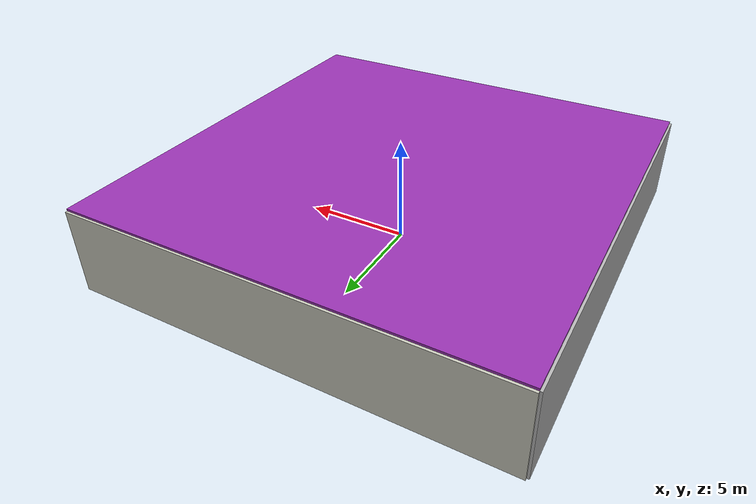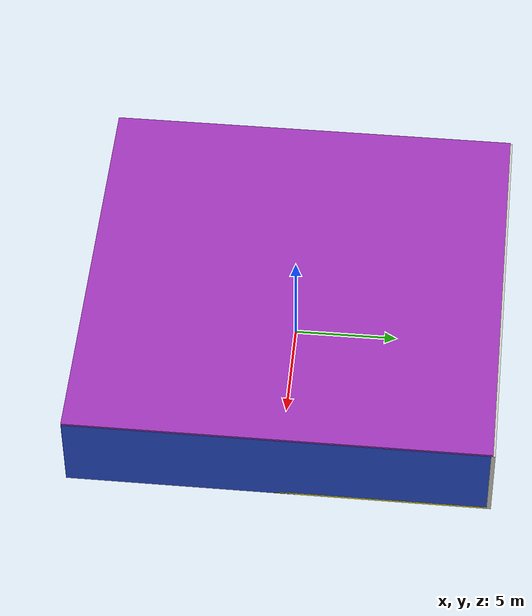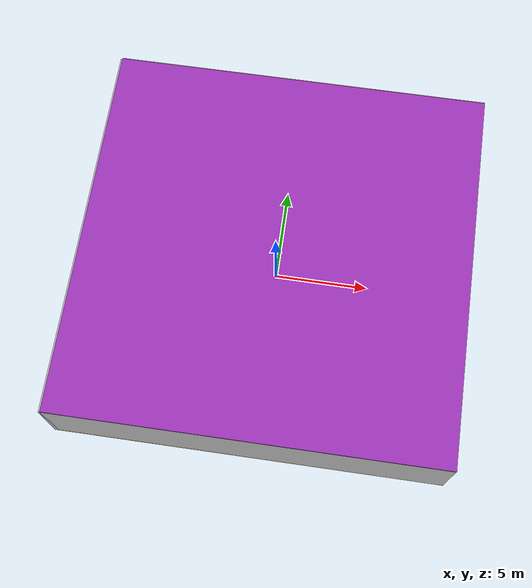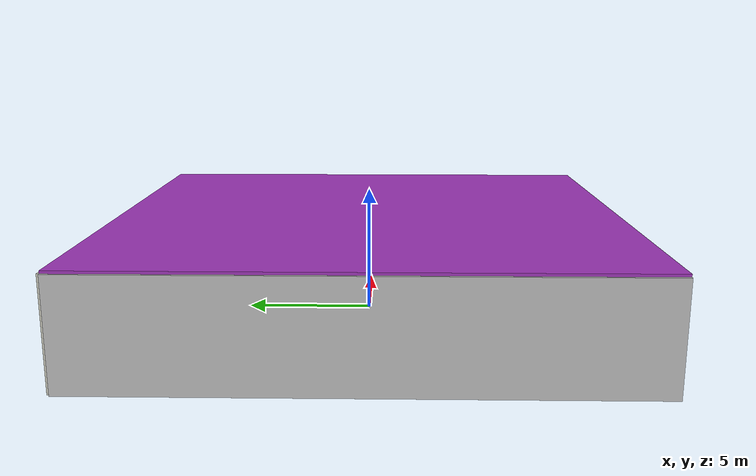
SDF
<sdf version="1.4">
 <world name="default">
  <physics type="ode">
   <max_step_size>0.001</max_step_size>
   <real_time_factor>1</real_time_factor>
   <real_time_update_rate>1000</real_time_update_rate>
   <gravity>0 0 -9.8</gravity>
  </physics>
  <scene><ambient>0.4 0.4 0.4 1</ambient><background>0.7 0.7 0.7 1</background><shadows>1</shadows></scene>
  <model name="Surrounding">
   <static>1</static>
   <link name="Ceiling">
    <collision name="Ceiling_Collision"><geometry><box><size>20 20 0.1</size></box></geometry></collision>
    <visual name="Ceiling_Visual">
     <geometry><box><size>20 20 0.1</size></box></geometry>
     <material>
      <script><uri>file://media/materials/scripts/gazebo.material</uri><name>Gazebo/PurpleGlow</name></script>
     </material>
    </visual>
    <pose>0 0 4.05 0 0 0</pose>
   </link>
   <link name="Wall_South">
    <collision name="Wall_South_Collision">
     <geometry><box><size>20 0 4</size></box></geometry>
     <pose>0 0 2 0 -0 0</pose>
    </collision>
    <visual name="Wall_South_Visual">
     <pose>0 0 2 0 -0 0</pose>
     <geometry><box><size>20 0 4</size></box></geometry>
     <material>
      <script><uri>file://media/materials/scripts/gazebo.material</uri><name>Gazebo/JointAnchor</name></script>
     </material>
    </visual>
    <velocity_decay><linear>0</linear><angular>0</angular></velocity_decay>
    <pose>0 -10 0 0 -0 0</pose>
   </link>
   <link name="Wall_East">
    <collision name="Wall_21_Collision">
     <geometry><box><size>20 0 4</size></box></geometry>
     <pose>0 0 2 0 -0 0</pose>
    </collision>
    <visual name="Wall_21_Visual">
     <pose>0 0 2 0 -0 0</pose>
     <geometry><box><size>20 0 4</size></box></geometry>
     <material>
      <script><uri>file://media/materials/scripts/gazebo.material</uri><name>Gazebo/BlueGlow</name></script>
     </material>
    </visual>
    <velocity_decay><linear>0</linear><angular>0</angular></velocity_decay>
    <pose>10 0 0 0 -0 1.5708</pose>
   </link>
   <link name="Wall_North">
    <collision name="Wall_22_Collision">
     <geometry><box><size>20 0.2 4</size></box></geometry>
     <pose>0 0 2 0 -0 0</pose>
    </collision>
    <visual name="Wall_22_Visual">
     <pose>0 0 2 0 -0 0</pose>
     <geometry><box><size>20 0.2 4</size></box></geometry>
     <material>
      <script><uri>file://media/materials/scripts/gazebo.material</uri><name>Gazebo/PaintedWall</name></script>
     </material>
    </visual>
    <velocity_decay><linear>0</linear><angular>0</angular></velocity_decay>
    <pose>0 10 0 0 -0 0</pose>
   </link>
   <link name="Wall_West">
    <collision name="Wall_23_Collision">
     <geometry><box><size>20 0.2 4</size></box></geometry>
     <pose>0 0 2 0 -0 0</pose>
    </collision>
    <visual name="Wall_23_Visual">
     <pose>0 0 2 0 -0 0</pose>
     <geometry><box><size>20 0.2 4</size></box></geometry>
     <material>
      <script><uri>file://media/materials/scripts/gazebo.material</uri><name>Gazebo/LightOff</name></script>
     </material>
    </visual>
    <velocity_decay><linear>0</linear><angular>0</angular></velocity_decay>
    <pose>-10 0 0 0 0 -1.5708</pose>
   </link>
   <link name="Ground_link">
    <collision name="collision">
     <pose>0 0 .05 0 -0 0</pose>
     <geometry><box><size>20 20 0.1</size></box></geometry>
    </collision>
    <visual name="visual">
     <pose>0 0 .05 0 -0 0</pose>
     <geometry><box><size>20 20 0.1</size></box></geometry>
     <material>
      <script><uri>file://media/materials/scripts/gazebo.material</uri><name>Gazebo/Yellow</name></script>
     </material>
    </visual>
   </link>
   <static>1</static>
  </model>
  <spherical_coordinates>
   <surface_model>EARTH_WGS84</surface_model>
   <latitude_deg>0</latitude_deg>
   <longitude_deg>0</longitude_deg>
   <elevation>0</elevation>
   <heading_deg>0</heading_deg>
  </spherical_coordinates>
  <light name="lightball_0" type="diffuse">
   <diffuse>0.8 0.8 0.8 1</diffuse>
   <specular>0.2 0.2 0.2 1</specular>
   <attenuation>
    <range>100</range>
    <constant>0.7</constant>
    <linear>0.01</linear>
    <quadratic>0.001</quadratic>
   </attenuation>
   <direction>-0.5 0.1 -0.9</direction>
   <pose>-6.03865791941 3.35118507089 2.41842372181 0 0 0</pose>
  </light>
  <light name="lightball_1" type="diffuse">
   <diffuse>0.8 0.8 0.8 1</diffuse>
   <specular>0.2 0.2 0.2 1</specular>
   <attenuation>
    <range>100</range>
    <constant>0.7</constant>
    <linear>0.01</linear>
    <quadratic>0.001</quadratic>
   </attenuation>
   <direction>-0.5 0.1 -0.9</direction>
   <pose>-8.28500219132 6.64768570044 1.25485365922 0 0 0</pose>
  </light>
  <light name="lightball_2" type="diffuse">
   <diffuse>0.8 0.8 0.8 1</diffuse>
   <specular>0.2 0.2 0.2 1</specular>
   <attenuation>
    <range>100</range>
    <constant>0.7</constant>
    <linear>0.01</linear>
    <quadratic>0.001</quadratic>
   </attenuation>
   <direction>-0.5 0.1 -0.9</direction>
   <pose>7.86048639968 -5.29782646245 3.8975032206 0 0 0</pose>
  </light>
  <light name="lightball_3" type="diffuse">
   <diffuse>0.8 0.8 0.8 1</diffuse>
   <specular>0.2 0.2 0.2 1</specular>
   <attenuation>
    <range>100</range>
    <constant>0.7</constant>
    <linear>0.01</linear>
    <quadratic>0.001</quadratic>
   </attenuation>
   <direction>-0.5 0.1 -0.9</direction>
   <pose>1.5289031519 -9.53385530734 3.1081688336 0 0 0</pose>
  </light>
  <light name="lightball_4" type="diffuse">
   <diffuse>0.8 0.8 0.8 1</diffuse>
   <specular>0.2 0.2 0.2 1</specular>
   <attenuation>
    <range>100</range>
    <constant>0.7</constant>
    <linear>0.01</linear>
    <quadratic>0.001</quadratic>
   </attenuation>
   <direction>-0.5 0.1 -0.9</direction>
   <pose>-9.58191079385 8.80407746702 2.08621969879 0 0 0</pose>
  </light>
  <light name="lightball_5" type="diffuse">
   <diffuse>0.8 0.8 0.8 1</diffuse>
   <specular>0.2 0.2 0.2 1</specular>
   <attenuation>
    <range>100</range>
    <constant>0.7</constant>
    <linear>0.01</linear>
    <quadratic>0.001</quadratic>
   </attenuation>
   <direction>-0.5 0.1 -0.9</direction>
   <pose>-8.20225206765 -6.9039290382 3.64675691548 0 0 0</pose>
  </light>
  <light name="lightball_6" type="diffuse">
   <diffuse>0.8 0.8 0.8 1</diffuse>
   <specular>0.2 0.2 0.2 1</specular>
   <attenuation>
    <range>100</range>
    <constant>0.7</constant>
    <linear>0.01</linear>
    <quadratic>0.001</quadratic>
   </attenuation>
   <direction>-0.5 0.1 -0.9</direction>
   <pose>5.93064445002 -0.463724749691 0.588438934037 0 0 0</pose>
  </light>
  <light name="lightball_7" type="diffuse">
   <diffuse>0.8 0.8 0.8 1</diffuse>
   <specular>0.2 0.2 0.2 1</specular>
   <attenuation>
    <range>100</range>
    <constant>0.7</constant>
    <linear>0.01</linear>
    <quadratic>0.001</quadratic>
   </attenuation>
   <direction>-0.5 0.1 -0.9</direction>
   <pose>1.61508740755 3.53860338154 3.62799032732 0 0 0</pose>
  </light>
  <include>
   <uri>model://robocup_3Dsim_goal</uri>
   <pose>-6.76851689542 -6.52487221562 0 0 0 1.86414851351</pose>
  </include>
  <include><uri>model://cabinet</uri><pose>-7.24097040249 -1.26454912313 0 0 0 2.25248866743</pose></include>
  <include>
   <uri>model://textured_shapes</uri>
   <pose>-1.49332869513 2.13792907343 0 0 0 2.2321581964</pose>
  </include>
  <include><uri>model://cabinet</uri><pose>5.54909223721 8.64105259666 0 0 0 2.99243239076</pose></include>
  <include>
   <uri>model://construction_cone</uri>
   <pose>6.7583124593 -8.09986306844 0 0 0 2.38686651604</pose>
  </include>
  <include>
   <uri>model://construction_cone</uri>
   <pose>6.72109728475 -2.11365324545 0 0 0 3.11488075303</pose>
  </include>
 </world>
</sdf>

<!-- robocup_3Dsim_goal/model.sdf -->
<sdf version="1.5">
  <model name="robocup_3d_goal">
    <static>true</static>
    <link name="left_post">
      <pose>0 1.05 0.45 0 0 0</pose>
      <collision name="collision">
        <geometry>
          <cylinder>
            <radius>0.05</radius>
            <length>0.9</length>
          </cylinder>
        </geometry>
      </collision>
      <visual name="visual">
        <geometry>
          <cylinder>
            <radius>0.05</radius>
            <length>0.9</length>
          </cylinder>
        </geometry>
        <material>
          <script>
            <uri>file://media/materials/scripts/gazebo.material</uri>
            <name>Gazebo/ZincYellow</name>
          </script>
        </material>
      </visual>
    </link>
    <link name="left_support_horiz_lower">
      <pose>0.30 1.05 0.01 0 0 0</pose>
      <collision name="collision">
        <geometry>
          <box>
            <size>0.50 0.02 0.02</size>
          </box>
        </geometry>
      </collision>
      <visual name="visual">
        <geometry>
          <box>
            <size>0.50 0.02 0.02</size>
          </box>
        </geometry>
        <material>
          <script>
            <uri>file://media/materials/scripts/gazebo.material</uri>
            <name>Gazebo/White</name>
          </script>
        </material>
      </visual>
    </link>
    <link name="left_support_horiz_upper">
      <pose>0.30 1.05 0.79 0 0 0</pose>
      <collision name="collision">
        <geometry>
          <box>
            <size>0.50 0.02 0.02</size>
          </box>
        </geometry>
      </collision>
      <visual name="visual">
        <geometry>
          <box>
            <size>0.50 0.02 0.02</size>
          </box>
        </geometry>
        <material>
          <script>
            <uri>file://media/materials/scripts/gazebo.material</uri>
            <name>Gazebo/White</name>
          </script>
        </material>
      </visual>
    </link>
    <link name="left_support_vertical">
      <pose>0.56 1.05 0.4 0 1.5708 0</pose>
      <collision name="collision">
        <geometry>
          <box>
            <size>0.80 0.02 0.02</size>
          </box>
        </geometry>
      </collision>
      <visual name="visual">
        <geometry>
          <box>
            <size>0.80 0.02 0.02</size>
          </box>
        </geometry>
        <material>
          <script>
            <uri>file://media/materials/scripts/gazebo.material</uri>
            <name>Gazebo/White</name>
          </script>
        </material>
      </visual>
    </link>
    <link name="right_support_horiz_lower">
      <pose>0.30 -1.05 0.01 0 0 0</pose>
      <collision name="collision">
        <geometry>
          <box>
            <size>0.50 0.02 0.02</size>
          </box>
        </geometry>
      </collision>
      <visual name="visual">
        <geometry>
          <box>
            <size>0.50 0.02 0.02</size>
          </box>
        </geometry>
        <material>
          <script>
            <uri>file://media/materials/scripts/gazebo.material</uri>
            <name>Gazebo/White</name>
          </script>
        </material>
      </visual>
    </link>
    <link name="right_support_horiz_upper">
      <pose>0.30 -1.05 0.79 0 0 0</pose>
      <collision name="collision">
        <geometry>
          <box>
            <size>0.50 0.02 0.02</size>
          </box>
        </geometry>
      </collision>
      <visual name="visual">
        <geometry>
          <box>
            <size>0.50 0.02 0.02</size>
          </box>
        </geometry>
        <material>
          <script>
            <uri>file://media/materials/scripts/gazebo.material</uri>
            <name>Gazebo/White</name>
          </script>
        </material>
      </visual>
    </link>
    <link name="right_support_vertical">
      <pose>0.56 -1.05 0.4 0 1.5708 0</pose>
      <collision name="collision">
        <geometry>
          <box>
            <size>0.80 0.02 0.02</size>
          </box>
        </geometry>
      </collision>
      <visual name="visual">
        <geometry>
          <box>
            <size>0.80 0.02 0.02</size>
          </box>
        </geometry>
        <material>
          <script>
            <uri>file://media/materials/scripts/gazebo.material</uri>
            <name>Gazebo/White</name>
          </script>
        </material>
      </visual>
    </link>
    <link name="center_support_horiz_lower">
      <pose>0.56 0 0.01 0 1.5708 0</pose>
      <collision name="collision">
        <geometry>
          <box>
            <size>0.02 2.08 0.02</size>
          </box>
        </geometry>
      </collision>
      <visual name="visual">
        <geometry>
          <box>
            <size>0.02 2.08 0.02</size>
          </box>
        </geometry>
        <material>
          <script>
            <uri>file://media/materials/scripts/gazebo.material</uri>
            <name>Gazebo/White</name>
          </script>
        </material>
      </visual>
    </link>
    <link name="center_support_horiz_upper">
      <pose>0.56 0 0.79 0 1.5708 0</pose>
      <collision name="collision">
        <geometry>
          <box>
            <size>0.02 2.08 0.02</size>
          </box>
        </geometry>
      </collision>
      <visual name="visual">
        <geometry>
          <box>
            <size>0.02 2.08 0.02</size>
          </box>
        </geometry>
        <material>
          <script>
            <uri>file://media/materials/scripts/gazebo.material</uri>
            <name>Gazebo/White</name>
          </script>
        </material>
      </visual>
    </link>
    <link name="right_post">
      <pose>0 -1.05 0.45 0 0 0</pose>
      <collision name="collision">
        <geometry>
          <cylinder>
            <radius>0.05</radius>
            <length>0.9</length>
          </cylinder>
        </geometry>
      </collision>
      <visual name="visual">
        <geometry>
          <cylinder>
            <radius>0.05</radius>
            <length>0.9</length>
          </cylinder>
        </geometry>
        <material>
          <script>
            <uri>file://media/materials/scripts/gazebo.material</uri>
            <name>Gazebo/ZincYellow</name>
          </script>
        </material>
      </visual>
    </link>
    <link name="crossbar">
      <pose>0 0 0.85 1.57 1.57 0</pose>
      <collision name="collision">
        <geometry>
          <cylinder>
            <radius>0.05</radius>
            <length>2.0</length>
          </cylinder>
        </geometry>
      </collision>
      <visual name="visual">
        <geometry>
          <cylinder>
            <radius>0.05</radius>
            <length>2.0</length>
          </cylinder>
        </geometry>
        <material>
          <script>
            <uri>file://media/materials/scripts/gazebo.material</uri>
            <name>Gazebo/ZincYellow</name>
          </script>
        </material>
      </visual>
    </link>
    <link name="center_net">
      <pose>0.56 0 0.40 0 0 0</pose>
      <collision name="collision">
        <geometry>
          <box>
            <size>0.01 2.1 0.80</size>
          </box>
        </geometry>
      </collision>
      <visual name="visual">
        <geometry>
          <box>
            <size>0.01 2.1 0.80</size>
          </box>
        </geometry>
        <material>
          <script>
            <uri>model://../model_source/models/robocup09_spl_field/materials/scripts/</uri>
            <uri>model://../model_source/models/robocup09_spl_field/materials/textures/</uri>
            <name>RoboCup/Net</name>
          </script>
        </material>
      </visual>
    </link>
    <link name="left_net">
      <pose>0.30 1.05 0.40 0 0 0</pose>
      <collision name="collision">
        <geometry>
          <box>
            <size>0.50 0.01 0.76</size>
          </box>
        </geometry>
      </collision>
      <visual name="visual">
        <geometry>
          <box>
            <size>0.50 0.01 0.76</size>
          </box>
        </geometry>
        <material>
          <script>
            <uri>model://../model_source/models/robocup09_spl_field/materials/scripts/</uri>
            <uri>model://../model_source/models/robocup09_spl_field/materials/textures/</uri>
            <name>RoboCup/Net</name>
          </script>
        </material>
      </visual>
    </link>
    <link name="right_net">
      <pose>0.30 -1.05 0.40 0 0 0</pose>
      <collision name="collision">
        <geometry>
          <box>
            <size>0.50 0.01 0.76</size>
          </box>
        </geometry>
      </collision>
      <visual name="visual">
        <geometry>
          <box>
            <size>0.50 0.01 0.76</size>
          </box>
        </geometry>
        <material>
          <script>
            <uri>model://../model_source/models/robocup09_spl_field/materials/scripts/</uri>
            <uri>model://../model_source/models/robocup09_spl_field/materials/textures/</uri>
            <name>RoboCup/Net</name>
          </script>
        </material>
      </visual>
    </link>
  </model>
</sdf>

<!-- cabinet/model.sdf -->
<sdf version="1.5">
  <model name="cabinet">
    <static>true</static>
    <link name="cabinet_bottom_plate">
      <inertial>
        <pose>0 0 -1 0 0 0</pose>
        <inertia>
          <ixx>2.050000</ixx>
          <ixy>0</ixy>
          <ixz>0</ixz>
          <iyy>2.050000</iyy>
          <iyz>0</iyz>
          <izz>2.050000</izz>
        </inertia>
        <mass>25.000000</mass>
      </inertial>
      <collision name="cabinet_bottom_plate_geom">
        <pose>0 0 0.010000 0 0 0</pose>
        <geometry>
          <box>
            <size>0.450000 0.450000 0.020000</size>
          </box>
        </geometry>
      </collision>
      <visual name="cabinet_bottom_plate_geom_visual">
        <pose>0 0 0.010000 0 0 0</pose>
        <geometry>
          <box>
            <size>0.450000 0.450000 0.020000</size>
          </box>
        </geometry>
        <material>
          <script>
            <uri>model://media/materials/scripts/gazebo.material</uri>
            <name>Gazebo/Wood</name>
          </script>
        </material>
      </visual>
      <collision name="cabinet_bottom_plate_geom_cabinet_back_plate">
        <pose>0.235000 0 0.510000 0 0 0</pose>
        <geometry>
          <box>
            <size>0.020000 0.450000 1.020000</size>
          </box>
        </geometry>
      </collision>
      <visual name="cabinet_bottom_plate_geom_cabinet_back_plate_visual">
        <pose>0.235000 0 0.510000 0 0 0</pose>
        <geometry>
          <box>
            <size>0.020000 0.450000 1.020000</size>
          </box>
        </geometry>
        <material>
          <script>
            <uri>model://media/materials/scripts/gazebo.material</uri>
            <name>Gazebo/Wood</name>
          </script>
        </material>
      </visual>
      <collision name="cabinet_bottom_plate_geom_cabinet_left_plate">
        <pose>0 0.235000 0.510000 0 0 0</pose>
        <geometry>
          <box>
            <size>0.450000 0.020000 1.020000</size>
          </box>
        </geometry>
      </collision>
      <visual name="cabinet_bottom_plate_geom_cabinet_left_plate_visual">
        <pose>0 0.235000 0.510000 0 0 0</pose>
        <geometry>
          <box>
            <size>0.450000 0.020000 1.020000</size>
          </box>
        </geometry>
        <material>
          <script>
            <uri>model://media/materials/scripts/gazebo.material</uri>
            <name>Gazebo/Wood</name>
          </script>
        </material>
      </visual>
      <collision name="cabinet_bottom_plate_geom_cabinet_middle_plate">
        <pose>0 0 0.510000 0 0 0</pose>
        <geometry>
          <box>
            <size>0.450000 0.450000 0.020000</size>
          </box>
        </geometry>
      </collision>
      <visual name="cabinet_bottom_plate_geom_cabinet_middle_plate_visual">
        <pose>0 0 0.510000 0 0 0</pose>
        <geometry>
          <box>
            <size>0.450000 0.450000 0.020000</size>
          </box>
        </geometry>
        <material>
          <script>
            <uri>model://media/materials/scripts/gazebo.material</uri>
            <name>Gazebo/Wood</name>
          </script>
        </material>
      </visual>
      <collision name="cabinet_bottom_plate_geom_cabinet_right_plate">
        <pose>0 -0.235000 0.510000 0 0 0</pose>
        <geometry>
          <box>
            <size>0.450000 0.020000 1.020000</size>
          </box>
        </geometry>
      </collision>
      <visual name="cabinet_bottom_plate_geom_cabinet_right_plate_visual">
        <pose>0 -0.235000 0.510000 0 0 0</pose>
        <geometry>
          <box>
            <size>0.450000 0.020000 1.020000</size>
          </box>
        </geometry>
        <material>
          <script>
            <uri>model://media/materials/scripts/gazebo.material</uri>
            <name>Gazebo/Wood</name>
          </script>
        </material>
      </visual>
      <collision name="cabinet_bottom_plate_geom_cabinet_top_plate">
        <pose>0 0 1.010000 0 0 0</pose>
        <geometry>
          <box>
            <size>0.450000 0.450000 0.020000</size>
          </box>
        </geometry>
      </collision>
      <visual name="cabinet_bottom_plate_geom_cabinet_top_plate_visual">
        <pose>0 0 1.010000 0 0 0</pose>
        <geometry>
          <box>
            <size>0.450000 0.450000 0.020000</size>
          </box>
        </geometry>
        <material>
          <script>
            <uri>model://media/materials/scripts/gazebo.material</uri>
            <name>Gazebo/Wood</name>
          </script>
        </material>
      </visual>
    </link>
  </model>
</sdf>

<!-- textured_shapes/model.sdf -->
<sdf version="1.6">
  <model name="textured_shapes">
    <pose>0 0 0.5 0 0 0</pose>
    <link name="box">
      <pose>0 -1.5 0 0 0 0</pose>
      <collision name="collision">
        <geometry>
          <box>
            <size>1 1 1</size>
          </box>
        </geometry>
      </collision>
      <visual name="visual">
        <geometry>
          <box>
            <size>1 1 1</size>
          </box>
        </geometry>
        <material>
          <script>
            <uri>model://../model_source/models/textured_shapes/materials/scripts</uri>
            <uri>model://../model_source/models/textured_shapes/materials/textures</uri>
            <name>TexturedShape/Squares</name>
          </script>
        </material>
      </visual>
    </link>
    <link name="sphere">
      <collision name="collision">
        <geometry>
          <sphere>
            <radius>0.5</radius>
          </sphere>
        </geometry>
      </collision>
      <visual name="visual">
        <geometry>
          <sphere>
            <radius>0.5</radius>
          </sphere>
        </geometry>
        <material>
          <script>
            <uri>model://../model_source/models/textured_shapes/materials/scripts</uri>
            <uri>model://../model_source/models/textured_shapes/materials/textures</uri>
            <name>TexturedShape/Squares</name>
          </script>
        </material>
      </visual>
    </link>
    <link name="cylinder">
      <pose>0 1.5 0 0 0 0</pose>
      <collision name="collision">
        <geometry>
          <cylinder>
            <radius>0.5</radius>
            <length>1</length>
          </cylinder>
        </geometry>
      </collision>
      <visual name="visual">
        <geometry>
          <cylinder>
            <radius>0.5</radius>
            <length>1</length>
          </cylinder>
        </geometry>
        <material>
          <script>
            <uri>model://../model_source/models/textured_shapes/materials/scripts</uri>
            <uri>model://../model_source/models/textured_shapes/materials/textures</uri>
            <name>TexturedShape/Squares</name>
          </script>
        </material>
      </visual>
    </link>
  </model>
</sdf>

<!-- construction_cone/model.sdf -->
<sdf version="1.5">
  <model name="Construction Cone">
    <link name="link">
      <collision name="collision">
        <geometry>
          <mesh>
            <scale>10 10 10</scale>
            <uri>file://isr-testbed/construction_cone/meshes/construction_cone.dae</uri>
          </mesh>
        </geometry>
      </collision>
      <visual name="visual">
        <geometry>
          <mesh>
            <scale>10 10 10</scale>
            <uri>file://isr-testbed/construction_cone/meshes/construction_cone.dae</uri>
          </mesh>
        </geometry>
      </visual>
    </link>
  </model>
</sdf>
